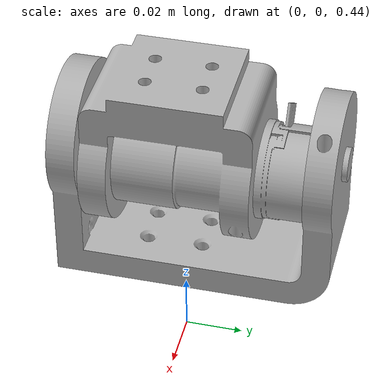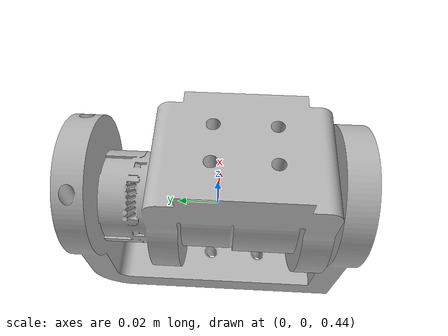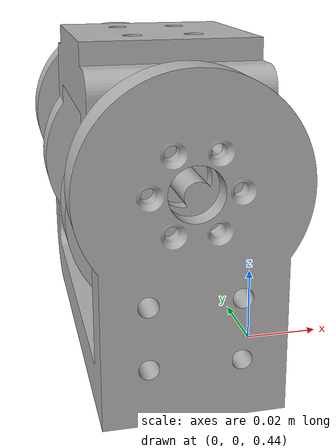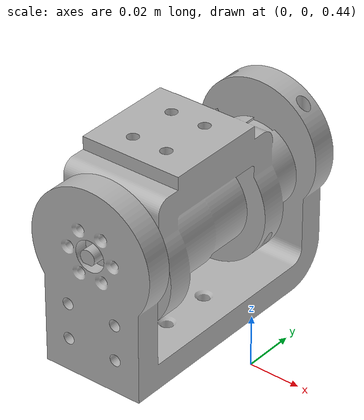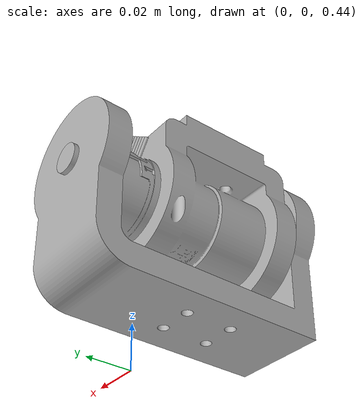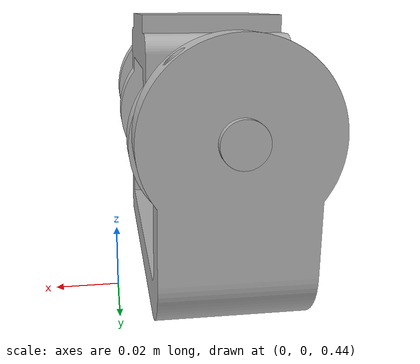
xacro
<?xml version="1.0" ?>
<robot name="test" xmlns:xacro="http://www.ros.org/wiki/xacro">

<xacro:include filename="$(find test_description)/urdf/materials.xacro" />
<xacro:include filename="$(find test_description)/urdf/test.trans" />
<xacro:include filename="$(find test_description)/urdf/test.gazebo" />
<link name="base_link">
  <inertial>
    <origin rpy="0 0 0" xyz="-0.028231632128056194 -0.003675318199012738 0.49662022768868597"/>
    <mass value="0.564739101917436"/>
    <inertia ixx="0.000285" ixy="0.0" ixz="0.0" iyy="0.000158" iyz="1.5e-05" izz="0.00023"/>
  </inertial>
  <visual>
    <origin rpy="0 0 0" xyz="0 0 0"/>
    <geometry>
      <mesh filename="package://test_description/meshes/base_link.stl" scale="0.001 0.001 0.001"/>
    </geometry>
    <material name="silver_default"/>
  </visual>
  <collision>
    <origin rpy="0 0 0" xyz="0 0 0"/>
    <geometry>
      <mesh filename="package://test_description/meshes/base_link.stl" scale="0.001 0.001 0.001"/>
    </geometry>
  </collision>
</link>

<link name="link1_1">
  <inertial>
    <origin rpy="0 0 0" xyz="-0.048131969724968963 0.5079823950605081 -0.06889178205624519"/>
    <mass value="0.09007107989785818"/>
    <inertia ixx="0.000176" ixy="0.0" ixz="-0.0" iyy="5.9e-05" iyz="-3e-06" izz="0.000145"/>
  </inertial>
  <visual>
    <origin rpy="0 0 0" xyz="-0.019925 0.508214 -0.543139"/>
    <geometry>
      <mesh filename="package://test_description/meshes/link1_1.stl" scale="0.001 0.001 0.001"/>
    </geometry>
    <material name="silver_default"/>
  </visual>
  <collision>
    <origin rpy="0 0 0" xyz="-0.019925 0.508214 -0.543139"/>
    <geometry>
      <mesh filename="package://test_description/meshes/link1_1.stl" scale="0.001 0.001 0.001"/>
    </geometry>
  </collision>
</link>

<joint name="Rev2" type="continuous">
  <origin rpy="0 0 0" xyz="0.019925 -0.508214 0.543139"/>
  <parent link="base_link"/>
  <child link="link1_1"/>
  <axis xyz="0.0 -1.0 -0.0"/>
</joint>

</robot>

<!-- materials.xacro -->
<robot name="test" xmlns:xacro="http://www.ros.org/wiki/xacro" >

<material name="silver_default">
  <color rgba="0.700 0.700 0.700 1.000"/>
</material>

</robot>

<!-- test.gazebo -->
<robot name="test" xmlns:xacro="http://www.ros.org/wiki/xacro" >

<xacro:property name="body_color" value="Gazebo/Silver" />

<gazebo>
  <plugin filename="libgazebo_ros_control.so" name="control"/>
</gazebo>
<gazebo reference="base_link">
  <material>${body_color}</material>
  <mu1>0.2</mu1>
  <mu2>0.2</mu2>
  <selfCollide>true</selfCollide>
  <gravity>true</gravity>
</gazebo>

<gazebo reference="link1_1">
  <material>${body_color}</material>
  <mu1>0.2</mu1>
  <mu2>0.2</mu2>
  <selfCollide>true</selfCollide>
</gazebo>

</robot>
